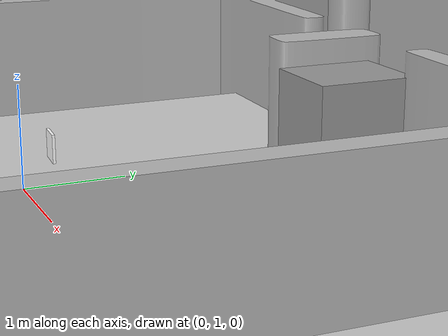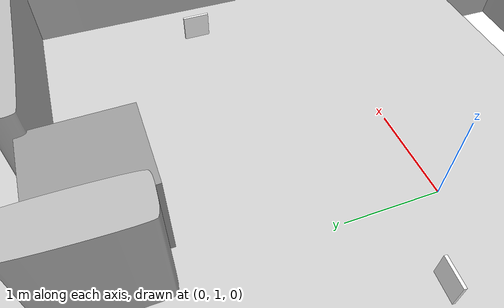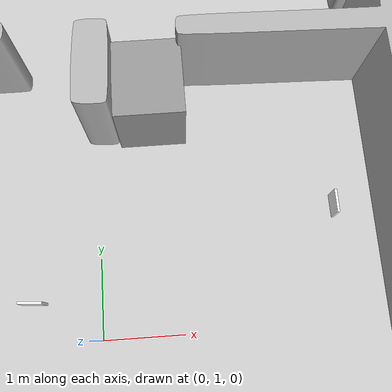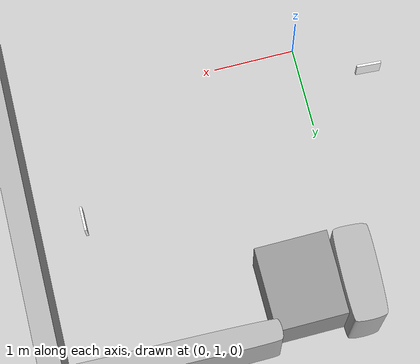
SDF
<sdf version="1.6">
 <world name="default">
  <light name="sun" type="directional">
   <pose>0 0 10 0 -0 0</pose>
   <diffuse>0.8 0.8 0.8 1</diffuse>
   <specular>0.1 0.1 0.1 1</specular>
   <attenuation>
    <range>1000</range>
    <constant>0.9</constant>
    <linear>0.01</linear>
    <quadratic>0.001</quadratic>
   </attenuation>
   <direction>-0.5 0.5 -1</direction>
  </light>
  <model name="ground_plane">
   <static>1</static>
   <link name="link">
    <collision name="collision">
     <geometry><plane><normal>0 0 1</normal><size>100 100</size></plane></geometry>
     <surface><friction><ode><mu>100</mu><mu2>50</mu2></ode></friction></surface>
    </collision>
    <visual name="visual">
     <cast_shadows>0</cast_shadows>
     <geometry><plane><normal>0 0 1</normal><size>100 100</size></plane></geometry>
     <material>
      <script><uri>file://media/materials/scripts/gazebo.material</uri><name>Gazebo/Grey</name></script>
     </material>
    </visual>
   </link>
  </model>
  <model name="brsu_ground_floor">
   <pose>-85 -30 0 0 -0 0</pose>
   <static>1</static>
   <link name="body">
    <visual name="visual">
     <geometry><mesh><uri>file://brsu_ground_floor.stl</uri><scale>1 1 1</scale></mesh></geometry>
    </visual>
    <collision name="collision">
     <geometry><mesh><uri>file://brsu_ground_floor.stl</uri><scale>1 1 1</scale></mesh></geometry>
    </collision>
   </link>
  </model>
  <model name="navigation_sign_right">
   <pose>3.01838 2.49396 0.15 0 -0 1.55671</pose>
   <link name="navigation_sign_right">
    <visual name="visual">
     <geometry><box><size>0.3 0.03 0.3</size></box></geometry>
     <material>
      <script>
       <uri>model://navigation_sign_right/materials/scripts</uri>
       <uri>model://navigation_sign_right/materials/textures</uri>
       <name>NavigationSign/Right</name>
      </script>
      <ambient>1 1 1 1</ambient>
      <diffuse>1 1 1 1</diffuse>
      <specular>0 0 0 1</specular>
      <emissive>1 1 1 0</emissive>
      <shader type="vertex"><normal_map>__default__</normal_map></shader>
     </material>
    </visual>
    <collision name="collision"><geometry><box><size>0.3 0.03 0.3</size></box></geometry></collision>
   </link>
   <static>1</static>
  </model>
  <model name="navigation_sign_left">
   <pose>-0.829188 1.49353 0.15 0 -0 3.07509</pose>
   <link name="navigation_sign_left">
    <visual name="visual">
     <geometry><box><size>0.3 0.03 0.3</size></box></geometry>
     <material>
      <script>
       <uri>model://navigation_sign_left/materials/scripts</uri>
       <uri>model://navigation_sign_left/materials/textures</uri>
       <name>NavigationSign/Left</name>
      </script>
      <ambient>1 1 1 1</ambient>
      <diffuse>1 1 1 1</diffuse>
      <specular>0 0 0 1</specular>
      <emissive>1 1 1 0</emissive>
      <shader type="vertex"><normal_map>__default__</normal_map></shader>
     </material>
    </visual>
    <collision name="collision"><geometry><box><size>0.3 0.03 0.3</size></box></geometry></collision>
   </link>
   <static>1</static>
  </model>
  <gravity>0 0 -9.8</gravity>
  <magnetic_field>6e-06 2.3e-05 -4.2e-05</magnetic_field>
  <atmosphere type="adiabatic"/>
  <physics name="default_physics" default="0" type="ode">
   <max_step_size>0.001</max_step_size>
   <real_time_factor>1</real_time_factor>
   <real_time_update_rate>1000</real_time_update_rate>
  </physics>
  <scene><ambient>0.4 0.4 0.4 1</ambient><background>0.7 0.7 0.7 1</background><shadows>1</shadows></scene>
  <spherical_coordinates>
   <surface_model>EARTH_WGS84</surface_model>
   <latitude_deg>0</latitude_deg>
   <longitude_deg>0</longitude_deg>
   <elevation>0</elevation>
   <heading_deg>0</heading_deg>
  </spherical_coordinates>
  <model name="unit_box_0_0">
   <link name="link">
    <pose>-0.177409 0.155122 0 0 -0 0</pose>
    <inertial>
     <mass>0.869582</mass>
     <inertia>
      <ixx>0.144931</ixx>
      <ixy>0</ixy>
      <ixz>0</ixz>
      <iyy>0.127262</iyy>
      <iyz>0</iyz>
      <izz>0.127262</izz>
     </inertia>
    </inertial>
    <visual name="visual">
     <geometry><box><size>0.869582 1 1</size></box></geometry>
     <material>
      <script><name>Gazebo/Grey</name><uri>file://media/materials/scripts/gazebo.material</uri></script>
      <ambient>0.3 0.3 0.3 1</ambient>
      <diffuse>0.7 0.7 0.7 1</diffuse>
      <specular>0.01 0.01 0.01 1</specular>
      <emissive>0 0 0 1</emissive>
     </material>
    </visual>
    <collision name="collision">
     <geometry><box><size>0.869582 1 1</size></box></geometry>
     <surface>
      <friction>
       <ode><mu>1</mu><mu2>1</mu2><fdir1>0 0 0</fdir1><slip1>0</slip1><slip2>0</slip2></ode>
       <torsional>
        <coefficient>1</coefficient>
        <patch_radius>0</patch_radius>
        <surface_radius>0</surface_radius>
        <use_patch_radius>1</use_patch_radius>
        <ode><slip>0</slip></ode>
       </torsional>
      </friction>
      <bounce><restitution_coefficient>0</restitution_coefficient><threshold>1e+06</threshold></bounce>
      <contact>
       <collide_without_contact>0</collide_without_contact>
       <collide_without_contact_bitmask>1</collide_without_contact_bitmask>
       <collide_bitmask>1</collide_bitmask>
       <ode>
        <soft_cfm>0</soft_cfm>
        <soft_erp>0.2</soft_erp>
        <kp>1e+13</kp>
        <kd>1</kd>
        <max_vel>0.01</max_vel>
        <min_depth>0</min_depth>
       </ode>
       <bullet>
        <split_impulse>1</split_impulse>
        <split_impulse_penetration_threshold>-0.01</split_impulse_penetration_threshold>
        <soft_cfm>0</soft_cfm>
        <soft_erp>0.2</soft_erp>
        <kp>1e+13</kp>
        <kd>1</kd>
       </bullet>
      </contact>
     </surface>
    </collision>
   </link>
   <static>0</static>
   <pose>0.918258 3.85388 0.500017 0.000199 -0 0.001994</pose>
  </model>
 </world>
</sdf>
